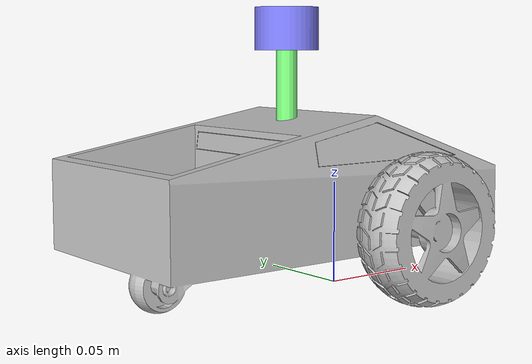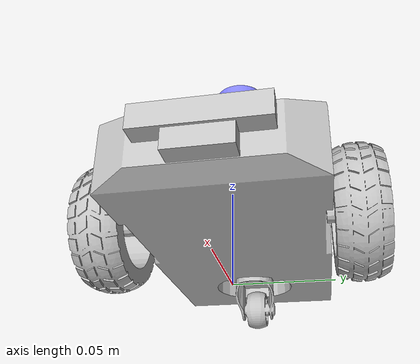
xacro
<robot name="car_sim_sensor" xmlns:xacro="http://wiki.ros.org/xacro">
     <!-- 包含solidworks导出的urdf文件 -->
    <xacro:include filename="$(find car_sim)/urdf/car_sim.urdf" />
    <!--运动控制-->
    <xacro:include filename="gazebo/move.xacro" />
    <!--雷达控制-->
    <xacro:include filename="gazebo/laser.xacro" />
    <!--摄像头-->
    <xacro:include filename="gazebo/camera.xacro" />
    <!--kinect-->
    <xacro:include filename="gazebo/kinect.xacro" />
</robot>

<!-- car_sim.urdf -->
<robot
  name="car_sim">
  <link
    name="base_link">
    <inertial>
      <origin
        xyz="-0.0224728885923136 1.27425469459951E-06 0.0472580562389892"
        rpy="0 0 0" />
      <mass
        value="0.829481223640528" />
      <inertia
        ixx="0.0009054495669054"
        ixy="8.44074331506777E-08"
        ixz="-6.71408249405037E-05"
        iyy="0.00240223972189565"
        iyz="3.69762089732741E-08"
        izz="0.00292549483842529" />
    </inertial>
    <visual>
      <origin
        xyz="0 0 0"
        rpy="0 0 0" />
      <geometry>
        <mesh
          filename="package://car_sim/meshes/base_link.STL" />
      </geometry>
      <material
        name="">
        <color
          rgba="0.752941176470588 0.752941176470588 0.752941176470588 1" />
      </material>
    </visual>
    <collision>
      <origin
        xyz="0 0 0"
        rpy="0 0 0" />
      <geometry>
        <mesh
          filename="package://car_sim/meshes/base_link.STL" />
      </geometry>
    </collision>
  </link>
  <link
    name="right_wheel">
    <inertial>
      <origin
        xyz="4.31437004178026E-13 0.00784312603299509 4.24278667754407E-13"
        rpy="0 0 0" />
      <mass
        value="0.0511503917691667" />
      <inertia
        ixx="2.19990579138419E-05"
        ixy="1.3165501060462E-16"
        ixz="1.99639528395629E-18"
        iyy="3.89734768739138E-05"
        iyz="6.81870838822919E-16"
        izz="2.19987364113652E-05" />
    </inertial>
    <visual>
      <origin
        xyz="0 0 0"
        rpy="0 0 0" />
      <geometry>
        <mesh
          filename="package://car_sim/meshes/right_wheel.STL" />
      </geometry>
      <material
        name="">
        <color
          rgba="0.752941176470588 0.752941176470588 0.752941176470588 1" />
      </material>
    </visual>
    <collision>
      <origin
        xyz="0 0 0"
        rpy="0 0 0" />
      <geometry>
        <mesh
          filename="package://car_sim/meshes/right_wheel.STL" />
      </geometry>
    </collision>
  </link>
  <joint
    name="base_r_wheel_joint"
    type="continuous">
    <origin
      xyz="0 -0.0722 0.034893039656296"
      rpy="0 0 0" />
    <parent
      link="base_link" />
    <child
      link="right_wheel" />
    <axis
      xyz="0 1 0" />
  </joint>
  <link
    name="support">
    <inertial>
      <origin
        xyz="1.52655665885959E-16 -1.73472347597681E-18 0.04"
        rpy="0 0 0" />
      <mass
        value="0.00628318530717959" />
      <inertia
        ixx="3.39030207199899E-06"
        ixy="3.13465160219317E-38"
        ixz="-1.17009460541534E-20"
        iyy="3.39030207199899E-06"
        iyz="-1.59105471050738E-35"
        izz="7.85398163397449E-08" />
    </inertial>
    <visual>
      <origin
        xyz="0 0 0"
        rpy="0 0 0" />
      <geometry>
        <mesh
          filename="package://car_sim/meshes/support.STL" />
      </geometry>
      <material
        name="">
        <color
          rgba="0.501960784313725 1 0.501960784313725 1" />
      </material>
    </visual>
    <collision>
      <origin
        xyz="0 0 0"
        rpy="0 0 0" />
      <geometry>
        <mesh
          filename="package://car_sim/meshes/support.STL" />
      </geometry>
    </collision>
  </link>
  <joint
    name="suppor2base"
    type="fixed">
    <origin
      xyz="-0.03 0 0.0348930396562961"
      rpy="0 0 0" />
    <parent
      link="base_link" />
    <child
      link="support" />
    <axis
      xyz="0 0 0" />
  </joint>
  <link
    name="laser">
    <inertial>
      <origin
        xyz="3.46944695195361E-17 1.73472347597681E-18 0.01"
        rpy="0 0 0" />
      <mass
        value="0.0141371669411541" />
      <inertia
        ixx="1.26645453847839E-06"
        ixy="-2.50772128175425E-37"
        ixz="1.1462049430025E-21"
        iyy="1.26645453847839E-06"
        iyz="7.43526531340992E-36"
        izz="1.59043128087983E-06" />
    </inertial>
    <visual>
      <origin
        xyz="0 0 0"
        rpy="0 0 0" />
      <geometry>
        <mesh
          filename="package://car_sim/meshes/laser.STL" />
      </geometry>
      <material
        name="">
        <color
          rgba="0.501960784313725 0.501960784313725 1 1" />
      </material>
    </visual>
    <collision>
      <origin
        xyz="0 0 0"
        rpy="0 0 0" />
      <geometry>
        <mesh
          filename="package://car_sim/meshes/laser.STL" />
      </geometry>
    </collision>
  </link>
  <joint
    name="laser2support"
    type="fixed">
    <origin
      xyz="0 0 0.08"
      rpy="0 0 0" />
    <parent
      link="support" />
    <child
      link="laser" />
    <axis
      xyz="0 0 0" />
  </joint>
  <link
    name="left_wheel">
    <inertial>
      <origin
        xyz="-4.31387130878091E-13 -0.00784312603299506 4.24289076095263E-13"
        rpy="0 0 0" />
      <mass
        value="0.0511503917691667" />
      <inertia
        ixx="2.1999057913842E-05"
        ixy="1.31578920388607E-16"
        ixz="-2.007107256165E-18"
        iyy="3.89734768739138E-05"
        iyz="-6.81855529115342E-16"
        izz="2.19987364113653E-05" />
    </inertial>
    <visual>
      <origin
        xyz="0 0 0"
        rpy="0 0 0" />
      <geometry>
        <mesh
          filename="package://car_sim/meshes/left_wheel.STL" />
      </geometry>
      <material
        name="">
        <color
          rgba="0.752941176470588 0.752941176470588 0.752941176470588 1" />
      </material>
    </visual>
    <collision>
      <origin
        xyz="0 0 0"
        rpy="0 0 0" />
      <geometry>
        <mesh
          filename="package://car_sim/meshes/left_wheel.STL" />
      </geometry>
    </collision>
  </link>
  <joint
    name="base_l_wheel_joint"
    type="continuous">
    <origin
      xyz="0 0.0722 0.034893039656296"
      rpy="0 0 0" />
    <parent
      link="base_link" />
    <child
      link="left_wheel" />
    <axis
      xyz="0 1 0" />
  </joint>
  <link
    name="kinect">
    <inertial>
      <origin
        xyz="-0.00500000000000002 -1.90819582357449E-17 1.66967134562768E-17"
        rpy="0 0 0" />
      <mass
        value="0.00719999999999999" />
      <inertia
        ixx="2.2464E-06"
        ixy="7.25862132107059E-21"
        ixz="-1.24479524799473E-22"
        iyy="1.464E-07"
        iyz="-7.49500958026638E-23"
        izz="2.22E-06" />
    </inertial>
    <visual>
      <origin
        xyz="0 0 0"
        rpy="0 0 0" />
      <geometry>
        <mesh
          filename="package://car_sim/meshes/kinect.STL" />
      </geometry>
      <material
        name="">
        <color
          rgba="0.752941176470588 0.752941176470588 0.752941176470588 1" />
      </material>
    </visual>
    <collision>
      <origin
        xyz="0 0 0"
        rpy="0 0 0" />
      <geometry>
        <mesh
          filename="package://car_sim/meshes/kinect.STL" />
      </geometry>
    </collision>
  </link>
  <joint
    name="kinect2base"
    type="fixed">
    <origin
      xyz="0.0808000000000001 0 0.0468930396562957"
      rpy="0 0 0" />
    <parent
      link="base_link" />
    <child
      link="kinect" />
    <axis
      xyz="0 0 0" />
  </joint>
  <link
    name="camera">
    <inertial>
      <origin
        xyz="-0.00499999999999999 -2.08166817117217E-17 1.90819582357449E-17"
        rpy="0 0 0" />
      <mass
        value="0.003" />
      <inertia
        ixx="2.5E-07"
        ixy="7.52918180746962E-22"
        ixz="1.57782553425762E-23"
        iyy="4.99999999999999E-08"
        iyz="-6.6089383550409E-24"
        izz="2.5E-07" />
    </inertial>
    <visual>
      <origin
        xyz="0 0 0"
        rpy="0 0 0" />
      <geometry>
        <mesh
          filename="package://car_sim/meshes/camera.STL" />
      </geometry>
      <material
        name="">
        <color
          rgba="0.752941176470588 0.752941176470588 0.752941176470588 1" />
      </material>
    </visual>
    <collision>
      <origin
        xyz="0 0 0"
        rpy="0 0 0" />
      <geometry>
        <mesh
          filename="package://car_sim/meshes/camera.STL" />
      </geometry>
    </collision>
  </link>
  <joint
    name="camera2base"
    type="fixed">
    <origin
      xyz="0.0808 0 0.0348930396562957"
      rpy="0 0 0" />
    <parent
      link="base_link" />
    <child
      link="camera" />
    <axis
      xyz="0 0 0" />
  </joint>
      <!-- 添加点云坐标系kinect连杆坐标系的变换 -->
  <link name="kinect_link_fake"></link>
  <joint name="kincect_joint_fake" type="fixed">
    <origin xyz="0 0 0" rpy="-1.5708 0 -1.5708 "/>
    <parent link="kinect"/>
    <child link="kinect_link_fake"/>
  </joint>

</robot>
